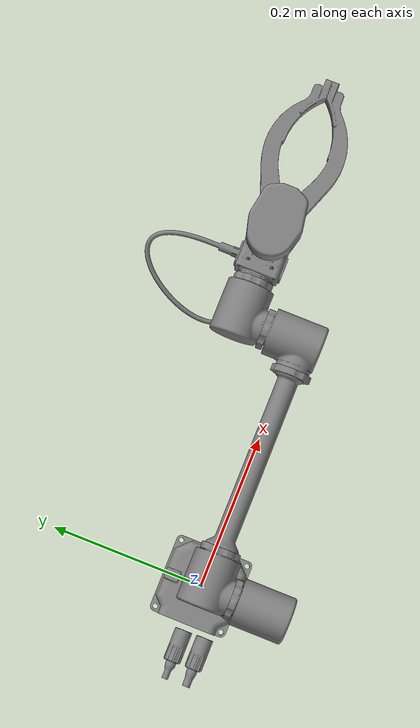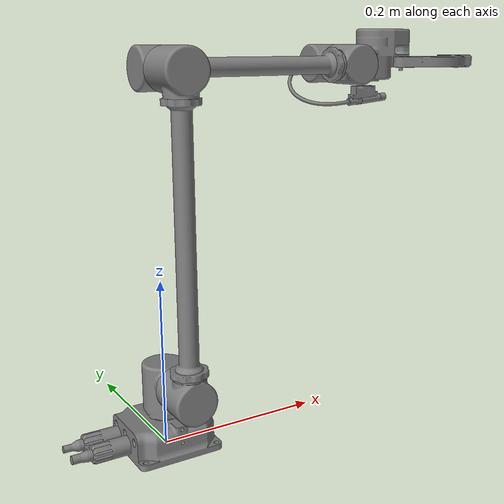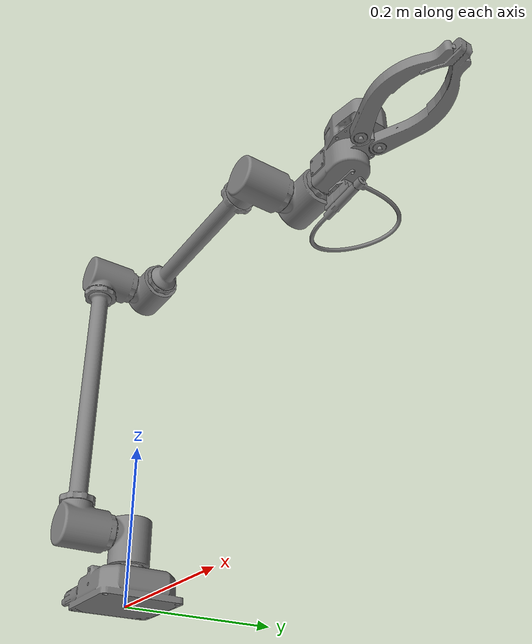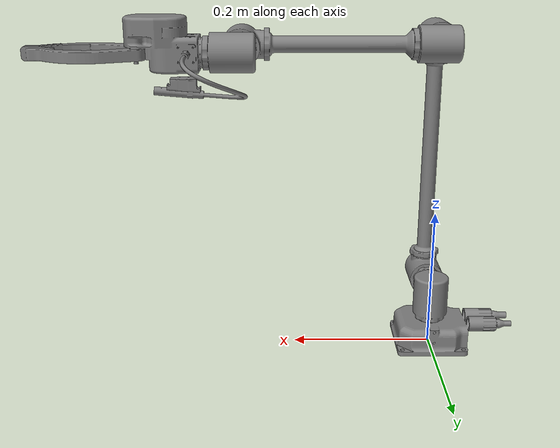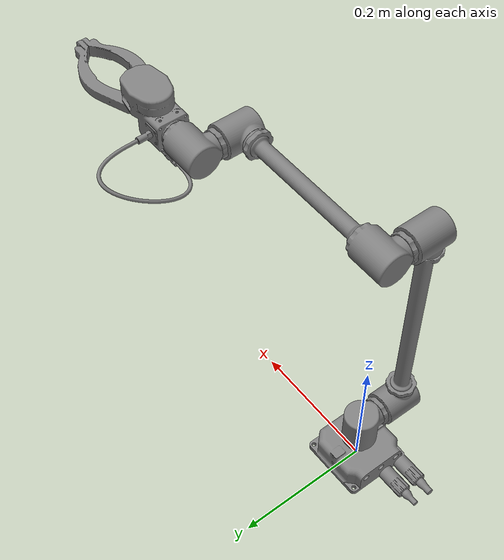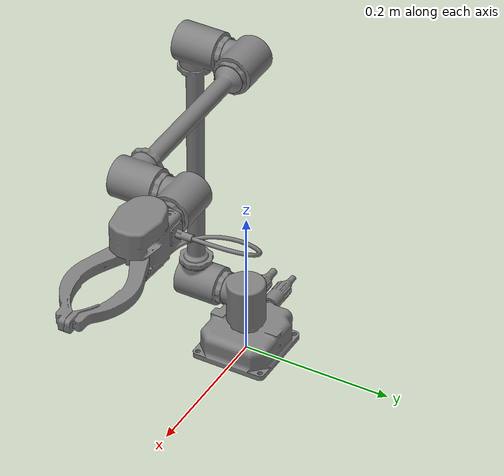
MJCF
<mujoco model="hdt_arm">
    <compiler angle="radian" meshdir="../meshes/" />
    <size njmax="500" nconmax="100" />
    <asset>
        <mesh name="H026994 - A35 M-2 PEDESTAL ASSY - SHAREABLE" file="H026994 - A35 M-2 PEDESTAL ASSY - SHAREABLE.STL" />
        <mesh name="H024840 - A35 M-2 DRIVE MODULE, SHAREABLE" file="H024840 - A35 M-2 DRIVE MODULE, SHAREABLE.STL" />
        <mesh name="H024847 - A35 M-2 PROXIMAL TUBE ASSY - SHAREABLE" file="H024847 - A35 M-2 PROXIMAL TUBE ASSY - SHAREABLE.STL" />
        <mesh name="H024848 - A35 M-2 DISTAL TUBE ASSY - SHAREABLE" file="H024848 - A35 M-2 DISTAL TUBE ASSY - SHAREABLE.STL" />
        <mesh name="H024842 - A35 M-2 PINCER ASSY - SHAREABLE, UNDERWATER" file="H024842 - A35 M-2 PINCER ASSY - SHAREABLE, UNDERWATER.STL" />
        <mesh name="H022927 - A35 PINCER FINGER, LONG, OVERMOLD ASSY - SHAREABLE" file="H022927 - A35 PINCER FINGER, LONG, OVERMOLD ASSY - SHAREABLE.STL" />
    </asset>
    <worldbody>
        <geom type="mesh" mesh="H026994 - A35 M-2 PEDESTAL ASSY - SHAREABLE" />
        <geom type="mesh" contype="0" conaffinity="0" group="1" rgba="0.784314 0.784314 0.784314 1" mesh="H026994 - A35 M-2 PEDESTAL ASSY - SHAREABLE" />
        <body name="drive1_link" pos="0 0 0.08335" quat="0.707107 0 0 -0.707107">
            <inertial pos="0 0 0" mass="1" diaginertia="0.005 0.005 0.005" />
            <joint name="drive1_joint" pos="0 0 0" axis="0 0 1" limited="true" range="-6.28319 6.28319" damping="0.7" />
            <geom type="mesh" mesh="H024840 - A35 M-2 DRIVE MODULE, SHAREABLE" />
            <geom type="mesh" contype="0" conaffinity="0" group="1" rgba="0.784314 0.784314 0.784314 1" mesh="H024840 - A35 M-2 DRIVE MODULE, SHAREABLE" />
            <body name="drive2_link" pos="0.07155 0 0" quat="0.707107 0 -0.707107 0">
                <inertial pos="0.17855 0 0" quat="0.5 0.5 0.5 0.5" mass="3" diaginertia="0.0787602 0.0787602 0.015" />
                <joint name="drive2_joint" pos="0 0 0" axis="0 0 1" limited="true" range="-1.5708 1.5708" damping="0.7" />
                <geom quat="0 1 0 0" type="mesh" mesh="H024840 - A35 M-2 DRIVE MODULE, SHAREABLE" />
                <geom quat="0 1 0 0" type="mesh" contype="0" conaffinity="0" group="1" rgba="0.784314 0.784314 0.784314 1" mesh="H024840 - A35 M-2 DRIVE MODULE, SHAREABLE" />
                <geom pos="0.17855 0 0" type="mesh" mesh="H024847 - A35 M-2 PROXIMAL TUBE ASSY - SHAREABLE" />
                <geom pos="0.17855 0 0" type="mesh" contype="0" conaffinity="0" group="1" rgba="0.784314 0.784314 0.784314 1" mesh="H024847 - A35 M-2 PROXIMAL TUBE ASSY - SHAREABLE" />
                <geom pos="0.3571 0 0" quat="0 0 1 0" type="mesh" mesh="H024840 - A35 M-2 DRIVE MODULE, SHAREABLE" />
                <geom pos="0.3571 0 0" quat="0 0 1 0" type="mesh" contype="0" conaffinity="0" group="1" rgba="0.784314 0.784314 0.784314 1" mesh="H024840 - A35 M-2 DRIVE MODULE, SHAREABLE" />
                <body name="drive3_link" pos="0.3571 0 0.07155">
                    <inertial pos="0 0 0" quat="0.5 0.5 0.5 -0.5" mass="1" diaginertia="0.005 0.005 0.005" />
                    <joint name="drive3_joint" pos="0 0 0" axis="0 0 1" limited="true" range="-4.49 1.35" damping="0.7" />
                    <geom quat="0.5 0.5 0.5 -0.5" type="mesh" mesh="H024840 - A35 M-2 DRIVE MODULE, SHAREABLE" />
                    <geom quat="0.5 0.5 0.5 -0.5" type="mesh" contype="0" conaffinity="0" group="1" rgba="0.784314 0.784314 0.784314 1" mesh="H024840 - A35 M-2 DRIVE MODULE, SHAREABLE" />
                    <body name="drive4_link" pos="0 0.142 0" quat="0.707107 -0.707107 0 0">
                        <inertial pos="0 0 0.064775" mass="2" diaginertia="0.0183916 0.0183916 0.01" />
                        <joint name="drive4_joint" pos="0 0 0" axis="0 0 1" limited="true" range="-6.28319 6.28319" damping="0.7" />
                        <geom quat="0 1 0 0" type="mesh" mesh="H024848 - A35 M-2 DISTAL TUBE ASSY - SHAREABLE" />
                        <geom quat="0 1 0 0" type="mesh" contype="0" conaffinity="0" group="1" rgba="0.784314 0.784314 0.784314 1" mesh="H024848 - A35 M-2 DISTAL TUBE ASSY - SHAREABLE" />
                        <geom pos="0 0 0.12955" quat="-0.5 0.5 -0.5 -0.5" type="mesh" mesh="H024840 - A35 M-2 DRIVE MODULE, SHAREABLE" />
                        <geom pos="0 0 0.12955" quat="-0.5 0.5 -0.5 -0.5" type="mesh" contype="0" conaffinity="0" group="1" rgba="0.784314 0.784314 0.784314 1" mesh="H024840 - A35 M-2 DRIVE MODULE, SHAREABLE" />
                        <body name="drive5_link" pos="0 -0.07155 0.12955" quat="-0.5 -0.5 0.5 -0.5">
                            <inertial pos="0 0 0" mass="1" diaginertia="0.005 0.005 0.005" />
                            <joint name="drive5_joint" pos="0 0 0" axis="0 0 1" limited="true" range="-6.28319 6.28319" damping="0.7" />
                            <geom quat="0 -0.707107 0 0.707107" type="mesh" mesh="H024840 - A35 M-2 DRIVE MODULE, SHAREABLE" />
                            <geom quat="0 -0.707107 0 0.707107" type="mesh" contype="0" conaffinity="0" group="1" rgba="0.784314 0.784314 0.784314 1" mesh="H024840 - A35 M-2 DRIVE MODULE, SHAREABLE" />
                            <body name="drive6_link" pos="0.0885 0 0" quat="0.707107 0 0.707107 0">
                                <inertial pos="0 0 0" mass="1" diaginertia="0.005 0.005 0.005" />
                                <joint name="drive6_joint" pos="0 0 0" axis="0 0 1" limited="true" range="-6.28319 6.28319" damping="0.7" />
                                <geom quat="0.5 0.5 0.5 -0.5" type="mesh" mesh="H024842 - A35 M-2 PINCER ASSY - SHAREABLE, UNDERWATER" />
                                <geom quat="0.5 0.5 0.5 -0.5" type="mesh" contype="0" conaffinity="0" group="1" rgba="0.784314 0.784314 0.784314 1" mesh="H024842 - A35 M-2 PINCER ASSY - SHAREABLE, UNDERWATER" />
                                <body name="pincer_link" pos="0.0135 0 0.0375" quat="0.5 -0.5 -0.5 -0.5">
                                    <inertial pos="0.0607647 0.00559547 -3.99908e-06" quat="0.0177323 0.706938 -0.0180733 0.706822" mass="0.0659882" diaginertia="0.00012599 0.000120886 7.08563e-06" />
                                    <joint name="pincer_joint" pos="0 0 0" axis="0 0 1" limited="true" range="-0.2 0.9" damping="0.7" />
                                    <geom quat="0 1 0 0" type="mesh" mesh="H022927 - A35 PINCER FINGER, LONG, OVERMOLD ASSY - SHAREABLE" />
                                    <geom quat="0 1 0 0" type="mesh" contype="0" conaffinity="0" group="1" rgba="0.784314 0.784314 0.784314 1" mesh="H022927 - A35 PINCER FINGER, LONG, OVERMOLD ASSY - SHAREABLE" />
                                </body>
                                <body name="pincer_link2" pos="-0.0135 0 0.0375" quat="0.5 0.5 -0.5 0.5">
                                    <inertial pos="0.0607647 0.00559547 -3.99908e-06" quat="0.0177323 0.706938 -0.0180733 0.706822" mass="0.0659882" diaginertia="0.00012599 0.000120886 7.08563e-06" />
                                    <joint name="pincer_joint2" pos="0 0 0" axis="0 0 1" limited="true" range="-0.2 1" damping="0.7" />
                                    <geom quat="0 1 0 0" type="mesh" mesh="H022927 - A35 PINCER FINGER, LONG, OVERMOLD ASSY - SHAREABLE" />
                                    <geom quat="0 1 0 0" type="mesh" contype="0" conaffinity="0" group="1" rgba="0.784314 0.784314 0.784314 1" mesh="H022927 - A35 PINCER FINGER, LONG, OVERMOLD ASSY - SHAREABLE" />
                                </body>
                            </body>
                        </body>
                    </body>
                </body>
            </body>
        </body>
    </worldbody>
</mujoco>
